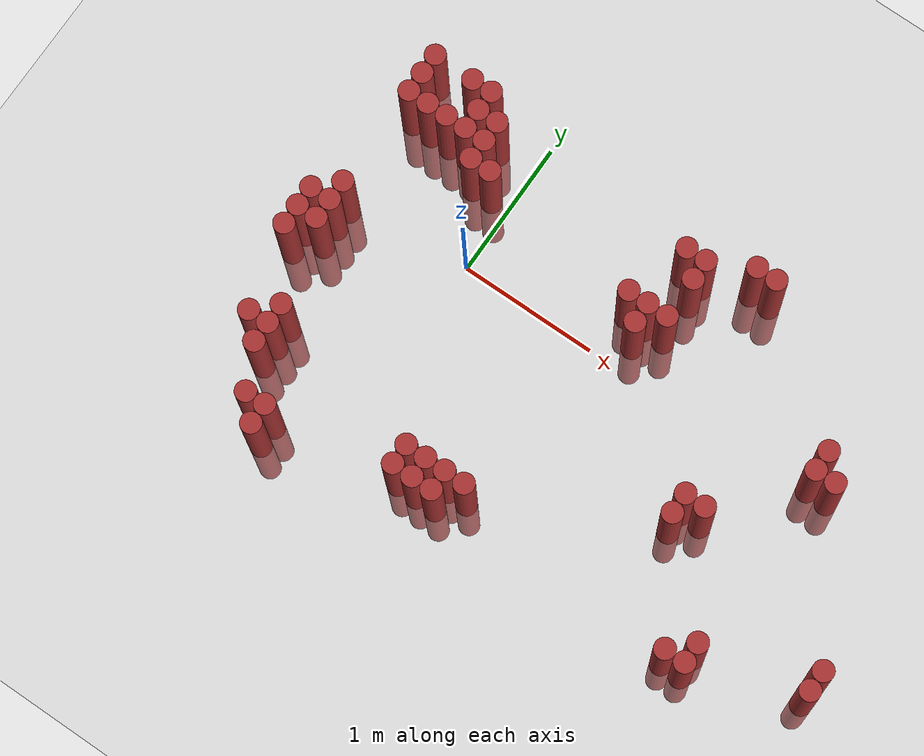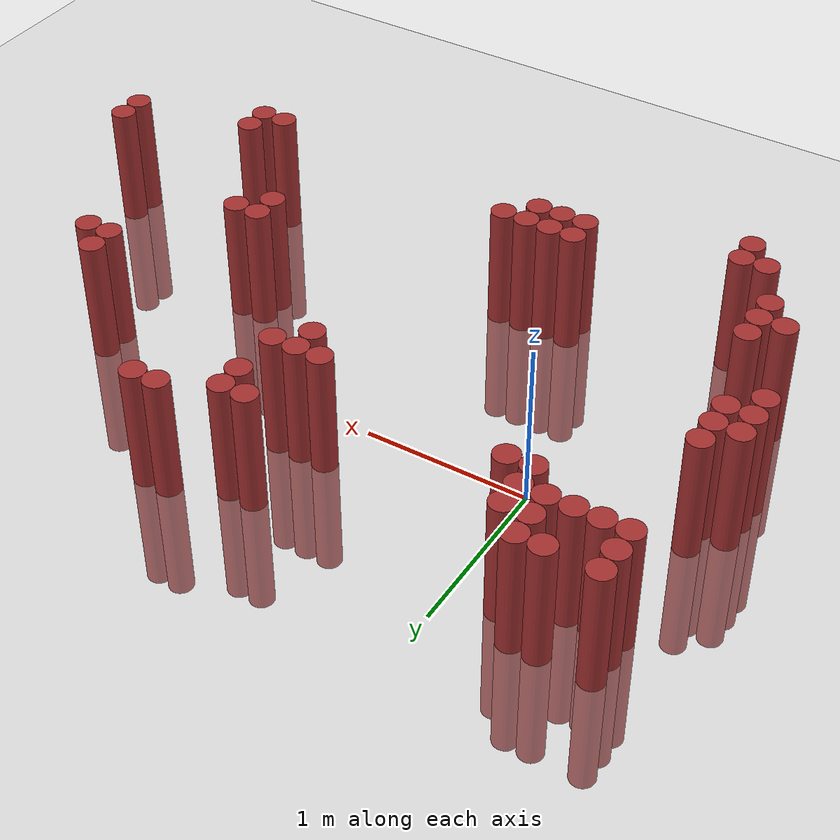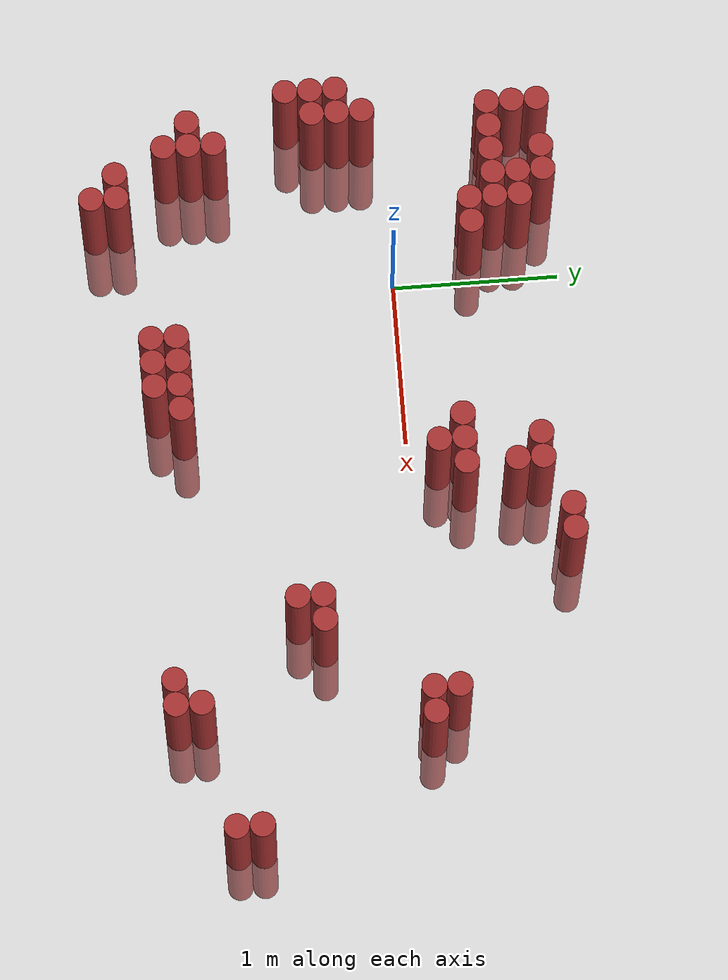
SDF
<sdf version="1.6">
 <world name="default">
  <model name="ground_plane">
   <static>1</static>
   <link name="link">
    <collision name="collision">
     <geometry><plane><normal>0 0 1</normal><size>100 100</size></plane></geometry>
     <surface><friction><ode><mu>100</mu><mu2>50</mu2></ode></friction></surface>
    </collision>
    <visual name="visual">
     <cast_shadows>0</cast_shadows>
     <geometry><plane><normal>0 0 1</normal><size>100 100</size></plane></geometry>
     <material>
      <script><uri>file://media/materials/scripts/gazebo.material</uri><name>Gazebo/Grey</name></script>
     </material>
    </visual>
   </link>
  </model>
  <model name="unit_cylinder_345">
   <static>1</static>
   <pose>-1.025000 -0.575000 0.000000 0.000000 0.000000 0.000000</pose>
   <link name="link">
    <inertial>
     <mass>1</mass>
     <inertia><ixx>0.145833</ixx><ixy>0</ixy><ixz>0</ixz><iyy>0.145833</iyy><iyz>0</iyz><izz>0.125</izz></inertia>
    </inertial>
    <collision name="collision">
     <geometry><cylinder><radius>0.075000</radius><length>1.5</length></cylinder></geometry>
    </collision>
    <visual name="visual">
     <geometry><cylinder><radius>0.075000</radius><length>1.5</length></cylinder></geometry>
     <material>
      <ambient>0.648000 0.192000 0.192000 1</ambient>
      <diffuse>0.648000 0.192000 0.192000 1</diffuse>
     </material>
     <material>
      <script><name>Gazebo/Grey</name><uri>file://media/materials/scripts/gazebo.material</uri></script>
     </material>
    </visual>
   </link>
  </model>
  <model name="unit_cylinder_346">
   <static>1</static>
   <pose>-1.025000 -0.425000 0.000000 0.000000 0.000000 0.000000</pose>
   <link name="link">
    <inertial>
     <mass>1</mass>
     <inertia><ixx>0.145833</ixx><ixy>0</ixy><ixz>0</ixz><iyy>0.145833</iyy><iyz>0</iyz><izz>0.125</izz></inertia>
    </inertial>
    <collision name="collision">
     <geometry><cylinder><radius>0.075000</radius><length>1.5</length></cylinder></geometry>
    </collision>
    <visual name="visual">
     <geometry><cylinder><radius>0.075000</radius><length>1.5</length></cylinder></geometry>
     <material>
      <ambient>0.648000 0.192000 0.192000 1</ambient>
      <diffuse>0.648000 0.192000 0.192000 1</diffuse>
     </material>
     <material>
      <script><name>Gazebo/Grey</name><uri>file://media/materials/scripts/gazebo.material</uri></script>
     </material>
    </visual>
   </link>
  </model>
  <model name="unit_cylinder_347">
   <static>1</static>
   <pose>-1.025000 -0.275000 0.000000 0.000000 0.000000 0.000000</pose>
   <link name="link">
    <inertial>
     <mass>1</mass>
     <inertia><ixx>0.145833</ixx><ixy>0</ixy><ixz>0</ixz><iyy>0.145833</iyy><iyz>0</iyz><izz>0.125</izz></inertia>
    </inertial>
    <collision name="collision">
     <geometry><cylinder><radius>0.075000</radius><length>1.5</length></cylinder></geometry>
    </collision>
    <visual name="visual">
     <geometry><cylinder><radius>0.075000</radius><length>1.5</length></cylinder></geometry>
     <material>
      <ambient>0.648000 0.192000 0.192000 1</ambient>
      <diffuse>0.648000 0.192000 0.192000 1</diffuse>
     </material>
     <material>
      <script><name>Gazebo/Grey</name><uri>file://media/materials/scripts/gazebo.material</uri></script>
     </material>
    </visual>
   </link>
  </model>
  <model name="unit_cylinder_355">
   <static>1</static>
   <pose>-0.875000 -1.175000 0.000000 0.000000 0.000000 0.000000</pose>
   <link name="link">
    <inertial>
     <mass>1</mass>
     <inertia><ixx>0.145833</ixx><ixy>0</ixy><ixz>0</ixz><iyy>0.145833</iyy><iyz>0</iyz><izz>0.125</izz></inertia>
    </inertial>
    <collision name="collision">
     <geometry><cylinder><radius>0.075000</radius><length>1.5</length></cylinder></geometry>
    </collision>
    <visual name="visual">
     <geometry><cylinder><radius>0.075000</radius><length>1.5</length></cylinder></geometry>
     <material>
      <ambient>0.648000 0.192000 0.192000 1</ambient>
      <diffuse>0.648000 0.192000 0.192000 1</diffuse>
     </material>
     <material>
      <script><name>Gazebo/Grey</name><uri>file://media/materials/scripts/gazebo.material</uri></script>
     </material>
    </visual>
   </link>
  </model>
  <model name="unit_cylinder_356">
   <static>1</static>
   <pose>-0.875000 -0.425000 0.000000 0.000000 0.000000 0.000000</pose>
   <link name="link">
    <inertial>
     <mass>1</mass>
     <inertia><ixx>0.145833</ixx><ixy>0</ixy><ixz>0</ixz><iyy>0.145833</iyy><iyz>0</iyz><izz>0.125</izz></inertia>
    </inertial>
    <collision name="collision">
     <geometry><cylinder><radius>0.075000</radius><length>1.5</length></cylinder></geometry>
    </collision>
    <visual name="visual">
     <geometry><cylinder><radius>0.075000</radius><length>1.5</length></cylinder></geometry>
     <material>
      <ambient>0.648000 0.192000 0.192000 1</ambient>
      <diffuse>0.648000 0.192000 0.192000 1</diffuse>
     </material>
     <material>
      <script><name>Gazebo/Grey</name><uri>file://media/materials/scripts/gazebo.material</uri></script>
     </material>
    </visual>
   </link>
  </model>
  <model name="unit_cylinder_357">
   <static>1</static>
   <pose>-0.875000 -0.275000 0.000000 0.000000 0.000000 0.000000</pose>
   <link name="link">
    <inertial>
     <mass>1</mass>
     <inertia><ixx>0.145833</ixx><ixy>0</ixy><ixz>0</ixz><iyy>0.145833</iyy><iyz>0</iyz><izz>0.125</izz></inertia>
    </inertial>
    <collision name="collision">
     <geometry><cylinder><radius>0.075000</radius><length>1.5</length></cylinder></geometry>
    </collision>
    <visual name="visual">
     <geometry><cylinder><radius>0.075000</radius><length>1.5</length></cylinder></geometry>
     <material>
      <ambient>0.648000 0.192000 0.192000 1</ambient>
      <diffuse>0.648000 0.192000 0.192000 1</diffuse>
     </material>
     <material>
      <script><name>Gazebo/Grey</name><uri>file://media/materials/scripts/gazebo.material</uri></script>
     </material>
    </visual>
   </link>
  </model>
  <model name="unit_cylinder_358">
   <static>1</static>
   <pose>-0.875000 -0.125000 0.000000 0.000000 0.000000 0.000000</pose>
   <link name="link">
    <inertial>
     <mass>1</mass>
     <inertia><ixx>0.145833</ixx><ixy>0</ixy><ixz>0</ixz><iyy>0.145833</iyy><iyz>0</iyz><izz>0.125</izz></inertia>
    </inertial>
    <collision name="collision">
     <geometry><cylinder><radius>0.075000</radius><length>1.5</length></cylinder></geometry>
    </collision>
    <visual name="visual">
     <geometry><cylinder><radius>0.075000</radius><length>1.5</length></cylinder></geometry>
     <material>
      <ambient>0.648000 0.192000 0.192000 1</ambient>
      <diffuse>0.648000 0.192000 0.192000 1</diffuse>
     </material>
     <material>
      <script><name>Gazebo/Grey</name><uri>file://media/materials/scripts/gazebo.material</uri></script>
     </material>
    </visual>
   </link>
  </model>
  <model name="unit_cylinder_359">
   <static>1</static>
   <pose>-0.875000 0.625000 0.000000 0.000000 0.000000 0.000000</pose>
   <link name="link">
    <inertial>
     <mass>1</mass>
     <inertia><ixx>0.145833</ixx><ixy>0</ixy><ixz>0</ixz><iyy>0.145833</iyy><iyz>0</iyz><izz>0.125</izz></inertia>
    </inertial>
    <collision name="collision">
     <geometry><cylinder><radius>0.075000</radius><length>1.5</length></cylinder></geometry>
    </collision>
    <visual name="visual">
     <geometry><cylinder><radius>0.075000</radius><length>1.5</length></cylinder></geometry>
     <material>
      <ambient>0.648000 0.192000 0.192000 1</ambient>
      <diffuse>0.648000 0.192000 0.192000 1</diffuse>
     </material>
     <material>
      <script><name>Gazebo/Grey</name><uri>file://media/materials/scripts/gazebo.material</uri></script>
     </material>
    </visual>
   </link>
  </model>
  <model name="unit_cylinder_360">
   <static>1</static>
   <pose>-0.875000 0.775000 0.000000 0.000000 0.000000 0.000000</pose>
   <link name="link">
    <inertial>
     <mass>1</mass>
     <inertia><ixx>0.145833</ixx><ixy>0</ixy><ixz>0</ixz><iyy>0.145833</iyy><iyz>0</iyz><izz>0.125</izz></inertia>
    </inertial>
    <collision name="collision">
     <geometry><cylinder><radius>0.075000</radius><length>1.5</length></cylinder></geometry>
    </collision>
    <visual name="visual">
     <geometry><cylinder><radius>0.075000</radius><length>1.5</length></cylinder></geometry>
     <material>
      <ambient>0.648000 0.192000 0.192000 1</ambient>
      <diffuse>0.648000 0.192000 0.192000 1</diffuse>
     </material>
     <material>
      <script><name>Gazebo/Grey</name><uri>file://media/materials/scripts/gazebo.material</uri></script>
     </material>
    </visual>
   </link>
  </model>
  <model name="unit_cylinder_361">
   <static>1</static>
   <pose>-0.875000 0.925000 0.000000 0.000000 0.000000 0.000000</pose>
   <link name="link">
    <inertial>
     <mass>1</mass>
     <inertia><ixx>0.145833</ixx><ixy>0</ixy><ixz>0</ixz><iyy>0.145833</iyy><iyz>0</iyz><izz>0.125</izz></inertia>
    </inertial>
    <collision name="collision">
     <geometry><cylinder><radius>0.075000</radius><length>1.5</length></cylinder></geometry>
    </collision>
    <visual name="visual">
     <geometry><cylinder><radius>0.075000</radius><length>1.5</length></cylinder></geometry>
     <material>
      <ambient>0.648000 0.192000 0.192000 1</ambient>
      <diffuse>0.648000 0.192000 0.192000 1</diffuse>
     </material>
     <material>
      <script><name>Gazebo/Grey</name><uri>file://media/materials/scripts/gazebo.material</uri></script>
     </material>
    </visual>
   </link>
  </model>
  <model name="unit_cylinder_368">
   <static>1</static>
   <pose>-0.725000 -1.325000 0.000000 0.000000 0.000000 0.000000</pose>
   <link name="link">
    <inertial>
     <mass>1</mass>
     <inertia><ixx>0.145833</ixx><ixy>0</ixy><ixz>0</ixz><iyy>0.145833</iyy><iyz>0</iyz><izz>0.125</izz></inertia>
    </inertial>
    <collision name="collision">
     <geometry><cylinder><radius>0.075000</radius><length>1.5</length></cylinder></geometry>
    </collision>
    <visual name="visual">
     <geometry><cylinder><radius>0.075000</radius><length>1.5</length></cylinder></geometry>
     <material>
      <ambient>0.648000 0.192000 0.192000 1</ambient>
      <diffuse>0.648000 0.192000 0.192000 1</diffuse>
     </material>
     <material>
      <script><name>Gazebo/Grey</name><uri>file://media/materials/scripts/gazebo.material</uri></script>
     </material>
    </visual>
   </link>
  </model>
  <model name="unit_cylinder_369">
   <static>1</static>
   <pose>-0.725000 -1.175000 0.000000 0.000000 0.000000 0.000000</pose>
   <link name="link">
    <inertial>
     <mass>1</mass>
     <inertia><ixx>0.145833</ixx><ixy>0</ixy><ixz>0</ixz><iyy>0.145833</iyy><iyz>0</iyz><izz>0.125</izz></inertia>
    </inertial>
    <collision name="collision">
     <geometry><cylinder><radius>0.075000</radius><length>1.5</length></cylinder></geometry>
    </collision>
    <visual name="visual">
     <geometry><cylinder><radius>0.075000</radius><length>1.5</length></cylinder></geometry>
     <material>
      <ambient>0.648000 0.192000 0.192000 1</ambient>
      <diffuse>0.648000 0.192000 0.192000 1</diffuse>
     </material>
     <material>
      <script><name>Gazebo/Grey</name><uri>file://media/materials/scripts/gazebo.material</uri></script>
     </material>
    </visual>
   </link>
  </model>
  <model name="unit_cylinder_370">
   <static>1</static>
   <pose>-0.725000 -1.025000 0.000000 0.000000 0.000000 0.000000</pose>
   <link name="link">
    <inertial>
     <mass>1</mass>
     <inertia><ixx>0.145833</ixx><ixy>0</ixy><ixz>0</ixz><iyy>0.145833</iyy><iyz>0</iyz><izz>0.125</izz></inertia>
    </inertial>
    <collision name="collision">
     <geometry><cylinder><radius>0.075000</radius><length>1.5</length></cylinder></geometry>
    </collision>
    <visual name="visual">
     <geometry><cylinder><radius>0.075000</radius><length>1.5</length></cylinder></geometry>
     <material>
      <ambient>0.648000 0.192000 0.192000 1</ambient>
      <diffuse>0.648000 0.192000 0.192000 1</diffuse>
     </material>
     <material>
      <script><name>Gazebo/Grey</name><uri>file://media/materials/scripts/gazebo.material</uri></script>
     </material>
    </visual>
   </link>
  </model>
  <model name="unit_cylinder_371">
   <static>1</static>
   <pose>-0.725000 0.625000 0.000000 0.000000 0.000000 0.000000</pose>
   <link name="link">
    <inertial>
     <mass>1</mass>
     <inertia><ixx>0.145833</ixx><ixy>0</ixy><ixz>0</ixz><iyy>0.145833</iyy><iyz>0</iyz><izz>0.125</izz></inertia>
    </inertial>
    <collision name="collision">
     <geometry><cylinder><radius>0.075000</radius><length>1.5</length></cylinder></geometry>
    </collision>
    <visual name="visual">
     <geometry><cylinder><radius>0.075000</radius><length>1.5</length></cylinder></geometry>
     <material>
      <ambient>0.648000 0.192000 0.192000 1</ambient>
      <diffuse>0.648000 0.192000 0.192000 1</diffuse>
     </material>
     <material>
      <script><name>Gazebo/Grey</name><uri>file://media/materials/scripts/gazebo.material</uri></script>
     </material>
    </visual>
   </link>
  </model>
  <model name="unit_cylinder_376">
   <static>1</static>
   <pose>-0.575000 -1.625000 0.000000 0.000000 0.000000 0.000000</pose>
   <link name="link">
    <inertial>
     <mass>1</mass>
     <inertia><ixx>0.145833</ixx><ixy>0</ixy><ixz>0</ixz><iyy>0.145833</iyy><iyz>0</iyz><izz>0.125</izz></inertia>
    </inertial>
    <collision name="collision">
     <geometry><cylinder><radius>0.075000</radius><length>1.5</length></cylinder></geometry>
    </collision>
    <visual name="visual">
     <geometry><cylinder><radius>0.075000</radius><length>1.5</length></cylinder></geometry>
     <material>
      <ambient>0.648000 0.192000 0.192000 1</ambient>
      <diffuse>0.648000 0.192000 0.192000 1</diffuse>
     </material>
     <material>
      <script><name>Gazebo/Grey</name><uri>file://media/materials/scripts/gazebo.material</uri></script>
     </material>
    </visual>
   </link>
  </model>
  <model name="unit_cylinder_377">
   <static>1</static>
   <pose>-0.575000 0.625000 0.000000 0.000000 0.000000 0.000000</pose>
   <link name="link">
    <inertial>
     <mass>1</mass>
     <inertia><ixx>0.145833</ixx><ixy>0</ixy><ixz>0</ixz><iyy>0.145833</iyy><iyz>0</iyz><izz>0.125</izz></inertia>
    </inertial>
    <collision name="collision">
     <geometry><cylinder><radius>0.075000</radius><length>1.5</length></cylinder></geometry>
    </collision>
    <visual name="visual">
     <geometry><cylinder><radius>0.075000</radius><length>1.5</length></cylinder></geometry>
     <material>
      <ambient>0.648000 0.192000 0.192000 1</ambient>
      <diffuse>0.648000 0.192000 0.192000 1</diffuse>
     </material>
     <material>
      <script><name>Gazebo/Grey</name><uri>file://media/materials/scripts/gazebo.material</uri></script>
     </material>
    </visual>
   </link>
  </model>
  <model name="unit_cylinder_378">
   <static>1</static>
   <pose>-0.575000 0.925000 0.000000 0.000000 0.000000 0.000000</pose>
   <link name="link">
    <inertial>
     <mass>1</mass>
     <inertia><ixx>0.145833</ixx><ixy>0</ixy><ixz>0</ixz><iyy>0.145833</iyy><iyz>0</iyz><izz>0.125</izz></inertia>
    </inertial>
    <collision name="collision">
     <geometry><cylinder><radius>0.075000</radius><length>1.5</length></cylinder></geometry>
    </collision>
    <visual name="visual">
     <geometry><cylinder><radius>0.075000</radius><length>1.5</length></cylinder></geometry>
     <material>
      <ambient>0.648000 0.192000 0.192000 1</ambient>
      <diffuse>0.648000 0.192000 0.192000 1</diffuse>
     </material>
     <material>
      <script><name>Gazebo/Grey</name><uri>file://media/materials/scripts/gazebo.material</uri></script>
     </material>
    </visual>
   </link>
  </model>
  <model name="unit_cylinder_380">
   <static>1</static>
   <pose>-0.425000 -1.775000 0.000000 0.000000 0.000000 0.000000</pose>
   <link name="link">
    <inertial>
     <mass>1</mass>
     <inertia><ixx>0.145833</ixx><ixy>0</ixy><ixz>0</ixz><iyy>0.145833</iyy><iyz>0</iyz><izz>0.125</izz></inertia>
    </inertial>
    <collision name="collision">
     <geometry><cylinder><radius>0.075000</radius><length>1.5</length></cylinder></geometry>
    </collision>
    <visual name="visual">
     <geometry><cylinder><radius>0.075000</radius><length>1.5</length></cylinder></geometry>
     <material>
      <ambient>0.648000 0.192000 0.192000 1</ambient>
      <diffuse>0.648000 0.192000 0.192000 1</diffuse>
     </material>
     <material>
      <script><name>Gazebo/Grey</name><uri>file://media/materials/scripts/gazebo.material</uri></script>
     </material>
    </visual>
   </link>
  </model>
  <model name="unit_cylinder_381">
   <static>1</static>
   <pose>-0.425000 -1.625000 0.000000 0.000000 0.000000 0.000000</pose>
   <link name="link">
    <inertial>
     <mass>1</mass>
     <inertia><ixx>0.145833</ixx><ixy>0</ixy><ixz>0</ixz><iyy>0.145833</iyy><iyz>0</iyz><izz>0.125</izz></inertia>
    </inertial>
    <collision name="collision">
     <geometry><cylinder><radius>0.075000</radius><length>1.5</length></cylinder></geometry>
    </collision>
    <visual name="visual">
     <geometry><cylinder><radius>0.075000</radius><length>1.5</length></cylinder></geometry>
     <material>
      <ambient>0.648000 0.192000 0.192000 1</ambient>
      <diffuse>0.648000 0.192000 0.192000 1</diffuse>
     </material>
     <material>
      <script><name>Gazebo/Grey</name><uri>file://media/materials/scripts/gazebo.material</uri></script>
     </material>
    </visual>
   </link>
  </model>
  <model name="unit_cylinder_382">
   <static>1</static>
   <pose>-0.425000 0.625000 0.000000 0.000000 0.000000 0.000000</pose>
   <link name="link">
    <inertial>
     <mass>1</mass>
     <inertia><ixx>0.145833</ixx><ixy>0</ixy><ixz>0</ixz><iyy>0.145833</iyy><iyz>0</iyz><izz>0.125</izz></inertia>
    </inertial>
    <collision name="collision">
     <geometry><cylinder><radius>0.075000</radius><length>1.5</length></cylinder></geometry>
    </collision>
    <visual name="visual">
     <geometry><cylinder><radius>0.075000</radius><length>1.5</length></cylinder></geometry>
     <material>
      <ambient>0.648000 0.192000 0.192000 1</ambient>
      <diffuse>0.648000 0.192000 0.192000 1</diffuse>
     </material>
     <material>
      <script><name>Gazebo/Grey</name><uri>file://media/materials/scripts/gazebo.material</uri></script>
     </material>
    </visual>
   </link>
  </model>
  <model name="unit_cylinder_383">
   <static>1</static>
   <pose>-0.425000 0.775000 0.000000 0.000000 0.000000 0.000000</pose>
   <link name="link">
    <inertial>
     <mass>1</mass>
     <inertia><ixx>0.145833</ixx><ixy>0</ixy><ixz>0</ixz><iyy>0.145833</iyy><iyz>0</iyz><izz>0.125</izz></inertia>
    </inertial>
    <collision name="collision">
     <geometry><cylinder><radius>0.075000</radius><length>1.5</length></cylinder></geometry>
    </collision>
    <visual name="visual">
     <geometry><cylinder><radius>0.075000</radius><length>1.5</length></cylinder></geometry>
     <material>
      <ambient>0.648000 0.192000 0.192000 1</ambient>
      <diffuse>0.648000 0.192000 0.192000 1</diffuse>
     </material>
     <material>
      <script><name>Gazebo/Grey</name><uri>file://media/materials/scripts/gazebo.material</uri></script>
     </material>
    </visual>
   </link>
  </model>
  <model name="unit_cylinder_384">
   <static>1</static>
   <pose>-0.425000 0.925000 0.000000 0.000000 0.000000 0.000000</pose>
   <link name="link">
    <inertial>
     <mass>1</mass>
     <inertia><ixx>0.145833</ixx><ixy>0</ixy><ixz>0</ixz><iyy>0.145833</iyy><iyz>0</iyz><izz>0.125</izz></inertia>
    </inertial>
    <collision name="collision">
     <geometry><cylinder><radius>0.075000</radius><length>1.5</length></cylinder></geometry>
    </collision>
    <visual name="visual">
     <geometry><cylinder><radius>0.075000</radius><length>1.5</length></cylinder></geometry>
     <material>
      <ambient>0.648000 0.192000 0.192000 1</ambient>
      <diffuse>0.648000 0.192000 0.192000 1</diffuse>
     </material>
     <material>
      <script><name>Gazebo/Grey</name><uri>file://media/materials/scripts/gazebo.material</uri></script>
     </material>
    </visual>
   </link>
  </model>
  <model name="unit_cylinder_386">
   <static>1</static>
   <pose>-0.275000 0.475000 0.000000 0.000000 0.000000 0.000000</pose>
   <link name="link">
    <inertial>
     <mass>1</mass>
     <inertia><ixx>0.145833</ixx><ixy>0</ixy><ixz>0</ixz><iyy>0.145833</iyy><iyz>0</iyz><izz>0.125</izz></inertia>
    </inertial>
    <collision name="collision">
     <geometry><cylinder><radius>0.075000</radius><length>1.5</length></cylinder></geometry>
    </collision>
    <visual name="visual">
     <geometry><cylinder><radius>0.075000</radius><length>1.5</length></cylinder></geometry>
     <material>
      <ambient>0.648000 0.192000 0.192000 1</ambient>
      <diffuse>0.648000 0.192000 0.192000 1</diffuse>
     </material>
     <material>
      <script><name>Gazebo/Grey</name><uri>file://media/materials/scripts/gazebo.material</uri></script>
     </material>
    </visual>
   </link>
  </model>
  <model name="unit_cylinder_387">
   <static>1</static>
   <pose>-0.275000 0.625000 0.000000 0.000000 0.000000 0.000000</pose>
   <link name="link">
    <inertial>
     <mass>1</mass>
     <inertia><ixx>0.145833</ixx><ixy>0</ixy><ixz>0</ixz><iyy>0.145833</iyy><iyz>0</iyz><izz>0.125</izz></inertia>
    </inertial>
    <collision name="collision">
     <geometry><cylinder><radius>0.075000</radius><length>1.5</length></cylinder></geometry>
    </collision>
    <visual name="visual">
     <geometry><cylinder><radius>0.075000</radius><length>1.5</length></cylinder></geometry>
     <material>
      <ambient>0.648000 0.192000 0.192000 1</ambient>
      <diffuse>0.648000 0.192000 0.192000 1</diffuse>
     </material>
     <material>
      <script><name>Gazebo/Grey</name><uri>file://media/materials/scripts/gazebo.material</uri></script>
     </material>
    </visual>
   </link>
  </model>
  <model name="unit_cylinder_388">
   <static>1</static>
   <pose>-0.275000 0.775000 0.000000 0.000000 0.000000 0.000000</pose>
   <link name="link">
    <inertial>
     <mass>1</mass>
     <inertia><ixx>0.145833</ixx><ixy>0</ixy><ixz>0</ixz><iyy>0.145833</iyy><iyz>0</iyz><izz>0.125</izz></inertia>
    </inertial>
    <collision name="collision">
     <geometry><cylinder><radius>0.075000</radius><length>1.5</length></cylinder></geometry>
    </collision>
    <visual name="visual">
     <geometry><cylinder><radius>0.075000</radius><length>1.5</length></cylinder></geometry>
     <material>
      <ambient>0.648000 0.192000 0.192000 1</ambient>
      <diffuse>0.648000 0.192000 0.192000 1</diffuse>
     </material>
     <material>
      <script><name>Gazebo/Grey</name><uri>file://media/materials/scripts/gazebo.material</uri></script>
     </material>
    </visual>
   </link>
  </model>
  <model name="unit_cylinder_391">
   <static>1</static>
   <pose>-0.125000 0.475000 0.000000 0.000000 0.000000 0.000000</pose>
   <link name="link">
    <inertial>
     <mass>1</mass>
     <inertia><ixx>0.145833</ixx><ixy>0</ixy><ixz>0</ixz><iyy>0.145833</iyy><iyz>0</iyz><izz>0.125</izz></inertia>
    </inertial>
    <collision name="collision">
     <geometry><cylinder><radius>0.075000</radius><length>1.5</length></cylinder></geometry>
    </collision>
    <visual name="visual">
     <geometry><cylinder><radius>0.075000</radius><length>1.5</length></cylinder></geometry>
     <material>
      <ambient>0.648000 0.192000 0.192000 1</ambient>
      <diffuse>0.648000 0.192000 0.192000 1</diffuse>
     </material>
     <material>
      <script><name>Gazebo/Grey</name><uri>file://media/materials/scripts/gazebo.material</uri></script>
     </material>
    </visual>
   </link>
  </model>
  <model name="unit_cylinder_392">
   <static>1</static>
   <pose>0.475000 -1.475000 0.000000 0.000000 0.000000 0.000000</pose>
   <link name="link">
    <inertial>
     <mass>1</mass>
     <inertia><ixx>0.145833</ixx><ixy>0</ixy><ixz>0</ixz><iyy>0.145833</iyy><iyz>0</iyz><izz>0.125</izz></inertia>
    </inertial>
    <collision name="collision">
     <geometry><cylinder><radius>0.075000</radius><length>1.5</length></cylinder></geometry>
    </collision>
    <visual name="visual">
     <geometry><cylinder><radius>0.075000</radius><length>1.5</length></cylinder></geometry>
     <material>
      <ambient>0.648000 0.192000 0.192000 1</ambient>
      <diffuse>0.648000 0.192000 0.192000 1</diffuse>
     </material>
     <material>
      <script><name>Gazebo/Grey</name><uri>file://media/materials/scripts/gazebo.material</uri></script>
     </material>
    </visual>
   </link>
  </model>
  <model name="unit_cylinder_393">
   <static>1</static>
   <pose>0.475000 -1.325000 0.000000 0.000000 0.000000 0.000000</pose>
   <link name="link">
    <inertial>
     <mass>1</mass>
     <inertia><ixx>0.145833</ixx><ixy>0</ixy><ixz>0</ixz><iyy>0.145833</iyy><iyz>0</iyz><izz>0.125</izz></inertia>
    </inertial>
    <collision name="collision">
     <geometry><cylinder><radius>0.075000</radius><length>1.5</length></cylinder></geometry>
    </collision>
    <visual name="visual">
     <geometry><cylinder><radius>0.075000</radius><length>1.5</length></cylinder></geometry>
     <material>
      <ambient>0.648000 0.192000 0.192000 1</ambient>
      <diffuse>0.648000 0.192000 0.192000 1</diffuse>
     </material>
     <material>
      <script><name>Gazebo/Grey</name><uri>file://media/materials/scripts/gazebo.material</uri></script>
     </material>
    </visual>
   </link>
  </model>
  <model name="unit_cylinder_394">
   <static>1</static>
   <pose>0.625000 -1.475000 0.000000 0.000000 0.000000 0.000000</pose>
   <link name="link">
    <inertial>
     <mass>1</mass>
     <inertia><ixx>0.145833</ixx><ixy>0</ixy><ixz>0</ixz><iyy>0.145833</iyy><iyz>0</iyz><izz>0.125</izz></inertia>
    </inertial>
    <collision name="collision">
     <geometry><cylinder><radius>0.075000</radius><length>1.5</length></cylinder></geometry>
    </collision>
    <visual name="visual">
     <geometry><cylinder><radius>0.075000</radius><length>1.5</length></cylinder></geometry>
     <material>
      <ambient>0.648000 0.192000 0.192000 1</ambient>
      <diffuse>0.648000 0.192000 0.192000 1</diffuse>
     </material>
     <material>
      <script><name>Gazebo/Grey</name><uri>file://media/materials/scripts/gazebo.material</uri></script>
     </material>
    </visual>
   </link>
  </model>
  <model name="unit_cylinder_395">
   <static>1</static>
   <pose>0.625000 -1.325000 0.000000 0.000000 0.000000 0.000000</pose>
   <link name="link">
    <inertial>
     <mass>1</mass>
     <inertia><ixx>0.145833</ixx><ixy>0</ixy><ixz>0</ixz><iyy>0.145833</iyy><iyz>0</iyz><izz>0.125</izz></inertia>
    </inertial>
    <collision name="collision">
     <geometry><cylinder><radius>0.075000</radius><length>1.5</length></cylinder></geometry>
    </collision>
    <visual name="visual">
     <geometry><cylinder><radius>0.075000</radius><length>1.5</length></cylinder></geometry>
     <material>
      <ambient>0.648000 0.192000 0.192000 1</ambient>
      <diffuse>0.648000 0.192000 0.192000 1</diffuse>
     </material>
     <material>
      <script><name>Gazebo/Grey</name><uri>file://media/materials/scripts/gazebo.material</uri></script>
     </material>
    </visual>
   </link>
  </model>
  <model name="unit_cylinder_397">
   <static>1</static>
   <pose>0.775000 -1.475000 0.000000 0.000000 0.000000 0.000000</pose>
   <link name="link">
    <inertial>
     <mass>1</mass>
     <inertia><ixx>0.145833</ixx><ixy>0</ixy><ixz>0</ixz><iyy>0.145833</iyy><iyz>0</iyz><izz>0.125</izz></inertia>
    </inertial>
    <collision name="collision">
     <geometry><cylinder><radius>0.075000</radius><length>1.5</length></cylinder></geometry>
    </collision>
    <visual name="visual">
     <geometry><cylinder><radius>0.075000</radius><length>1.5</length></cylinder></geometry>
     <material>
      <ambient>0.648000 0.192000 0.192000 1</ambient>
      <diffuse>0.648000 0.192000 0.192000 1</diffuse>
     </material>
     <material>
      <script><name>Gazebo/Grey</name><uri>file://media/materials/scripts/gazebo.material</uri></script>
     </material>
    </visual>
   </link>
  </model>
  <model name="unit_cylinder_398">
   <static>1</static>
   <pose>0.775000 -1.325000 0.000000 0.000000 0.000000 0.000000</pose>
   <link name="link">
    <inertial>
     <mass>1</mass>
     <inertia><ixx>0.145833</ixx><ixy>0</ixy><ixz>0</ixz><iyy>0.145833</iyy><iyz>0</iyz><izz>0.125</izz></inertia>
    </inertial>
    <collision name="collision">
     <geometry><cylinder><radius>0.075000</radius><length>1.5</length></cylinder></geometry>
    </collision>
    <visual name="visual">
     <geometry><cylinder><radius>0.075000</radius><length>1.5</length></cylinder></geometry>
     <material>
      <ambient>0.648000 0.192000 0.192000 1</ambient>
      <diffuse>0.648000 0.192000 0.192000 1</diffuse>
     </material>
     <material>
      <script><name>Gazebo/Grey</name><uri>file://media/materials/scripts/gazebo.material</uri></script>
     </material>
    </visual>
   </link>
  </model>
  <model name="unit_cylinder_399">
   <static>1</static>
   <pose>0.925000 -1.325000 0.000000 0.000000 0.000000 0.000000</pose>
   <link name="link">
    <inertial>
     <mass>1</mass>
     <inertia><ixx>0.145833</ixx><ixy>0</ixy><ixz>0</ixz><iyy>0.145833</iyy><iyz>0</iyz><izz>0.125</izz></inertia>
    </inertial>
    <collision name="collision">
     <geometry><cylinder><radius>0.075000</radius><length>1.5</length></cylinder></geometry>
    </collision>
    <visual name="visual">
     <geometry><cylinder><radius>0.075000</radius><length>1.5</length></cylinder></geometry>
     <material>
      <ambient>0.648000 0.192000 0.192000 1</ambient>
      <diffuse>0.648000 0.192000 0.192000 1</diffuse>
     </material>
     <material>
      <script><name>Gazebo/Grey</name><uri>file://media/materials/scripts/gazebo.material</uri></script>
     </material>
    </visual>
   </link>
  </model>
  <model name="unit_cylinder_400">
   <static>1</static>
   <pose>1.075000 0.325000 0.000000 0.000000 0.000000 0.000000</pose>
   <link name="link">
    <inertial>
     <mass>1</mass>
     <inertia><ixx>0.145833</ixx><ixy>0</ixy><ixz>0</ixz><iyy>0.145833</iyy><iyz>0</iyz><izz>0.125</izz></inertia>
    </inertial>
    <collision name="collision">
     <geometry><cylinder><radius>0.075000</radius><length>1.5</length></cylinder></geometry>
    </collision>
    <visual name="visual">
     <geometry><cylinder><radius>0.075000</radius><length>1.5</length></cylinder></geometry>
     <material>
      <ambient>0.648000 0.192000 0.192000 1</ambient>
      <diffuse>0.648000 0.192000 0.192000 1</diffuse>
     </material>
     <material>
      <script><name>Gazebo/Grey</name><uri>file://media/materials/scripts/gazebo.material</uri></script>
     </material>
    </visual>
   </link>
  </model>
  <model name="unit_cylinder_402">
   <static>1</static>
   <pose>1.225000 0.175000 0.000000 0.000000 0.000000 0.000000</pose>
   <link name="link">
    <inertial>
     <mass>1</mass>
     <inertia><ixx>0.145833</ixx><ixy>0</ixy><ixz>0</ixz><iyy>0.145833</iyy><iyz>0</iyz><izz>0.125</izz></inertia>
    </inertial>
    <collision name="collision">
     <geometry><cylinder><radius>0.075000</radius><length>1.5</length></cylinder></geometry>
    </collision>
    <visual name="visual">
     <geometry><cylinder><radius>0.075000</radius><length>1.5</length></cylinder></geometry>
     <material>
      <ambient>0.648000 0.192000 0.192000 1</ambient>
      <diffuse>0.648000 0.192000 0.192000 1</diffuse>
     </material>
     <material>
      <script><name>Gazebo/Grey</name><uri>file://media/materials/scripts/gazebo.material</uri></script>
     </material>
    </visual>
   </link>
  </model>
  <model name="unit_cylinder_403">
   <static>1</static>
   <pose>1.225000 0.325000 0.000000 0.000000 0.000000 0.000000</pose>
   <link name="link">
    <inertial>
     <mass>1</mass>
     <inertia><ixx>0.145833</ixx><ixy>0</ixy><ixz>0</ixz><iyy>0.145833</iyy><iyz>0</iyz><izz>0.125</izz></inertia>
    </inertial>
    <collision name="collision">
     <geometry><cylinder><radius>0.075000</radius><length>1.5</length></cylinder></geometry>
    </collision>
    <visual name="visual">
     <geometry><cylinder><radius>0.075000</radius><length>1.5</length></cylinder></geometry>
     <material>
      <ambient>0.648000 0.192000 0.192000 1</ambient>
      <diffuse>0.648000 0.192000 0.192000 1</diffuse>
     </material>
     <material>
      <script><name>Gazebo/Grey</name><uri>file://media/materials/scripts/gazebo.material</uri></script>
     </material>
    </visual>
   </link>
  </model>
  <model name="unit_cylinder_404">
   <static>1</static>
   <pose>1.225000 0.775000 0.000000 0.000000 0.000000 0.000000</pose>
   <link name="link">
    <inertial>
     <mass>1</mass>
     <inertia><ixx>0.145833</ixx><ixy>0</ixy><ixz>0</ixz><iyy>0.145833</iyy><iyz>0</iyz><izz>0.125</izz></inertia>
    </inertial>
    <collision name="collision">
     <geometry><cylinder><radius>0.075000</radius><length>1.5</length></cylinder></geometry>
    </collision>
    <visual name="visual">
     <geometry><cylinder><radius>0.075000</radius><length>1.5</length></cylinder></geometry>
     <material>
      <ambient>0.648000 0.192000 0.192000 1</ambient>
      <diffuse>0.648000 0.192000 0.192000 1</diffuse>
     </material>
     <material>
      <script><name>Gazebo/Grey</name><uri>file://media/materials/scripts/gazebo.material</uri></script>
     </material>
    </visual>
   </link>
  </model>
  <model name="unit_cylinder_410">
   <static>1</static>
   <pose>1.375000 0.325000 0.000000 0.000000 0.000000 0.000000</pose>
   <link name="link">
    <inertial>
     <mass>1</mass>
     <inertia><ixx>0.145833</ixx><ixy>0</ixy><ixz>0</ixz><iyy>0.145833</iyy><iyz>0</iyz><izz>0.125</izz></inertia>
    </inertial>
    <collision name="collision">
     <geometry><cylinder><radius>0.075000</radius><length>1.5</length></cylinder></geometry>
    </collision>
    <visual name="visual">
     <geometry><cylinder><radius>0.075000</radius><length>1.5</length></cylinder></geometry>
     <material>
      <ambient>0.648000 0.192000 0.192000 1</ambient>
      <diffuse>0.648000 0.192000 0.192000 1</diffuse>
     </material>
     <material>
      <script><name>Gazebo/Grey</name><uri>file://media/materials/scripts/gazebo.material</uri></script>
     </material>
    </visual>
   </link>
  </model>
  <model name="unit_cylinder_411">
   <static>1</static>
   <pose>1.375000 0.625000 0.000000 0.000000 0.000000 0.000000</pose>
   <link name="link">
    <inertial>
     <mass>1</mass>
     <inertia><ixx>0.145833</ixx><ixy>0</ixy><ixz>0</ixz><iyy>0.145833</iyy><iyz>0</iyz><izz>0.125</izz></inertia>
    </inertial>
    <collision name="collision">
     <geometry><cylinder><radius>0.075000</radius><length>1.5</length></cylinder></geometry>
    </collision>
    <visual name="visual">
     <geometry><cylinder><radius>0.075000</radius><length>1.5</length></cylinder></geometry>
     <material>
      <ambient>0.648000 0.192000 0.192000 1</ambient>
      <diffuse>0.648000 0.192000 0.192000 1</diffuse>
     </material>
     <material>
      <script><name>Gazebo/Grey</name><uri>file://media/materials/scripts/gazebo.material</uri></script>
     </material>
    </visual>
   </link>
  </model>
  <model name="unit_cylinder_412">
   <static>1</static>
   <pose>1.375000 0.775000 0.000000 0.000000 0.000000 0.000000</pose>
   <link name="link">
    <inertial>
     <mass>1</mass>
     <inertia><ixx>0.145833</ixx><ixy>0</ixy><ixz>0</ixz><iyy>0.145833</iyy><iyz>0</iyz><izz>0.125</izz></inertia>
    </inertial>
    <collision name="collision">
     <geometry><cylinder><radius>0.075000</radius><length>1.5</length></cylinder></geometry>
    </collision>
    <visual name="visual">
     <geometry><cylinder><radius>0.075000</radius><length>1.5</length></cylinder></geometry>
     <material>
      <ambient>0.648000 0.192000 0.192000 1</ambient>
      <diffuse>0.648000 0.192000 0.192000 1</diffuse>
     </material>
     <material>
      <script><name>Gazebo/Grey</name><uri>file://media/materials/scripts/gazebo.material</uri></script>
     </material>
    </visual>
   </link>
  </model>
  <model name="unit_cylinder_421">
   <static>1</static>
   <pose>1.675000 0.925000 0.000000 0.000000 0.000000 0.000000</pose>
   <link name="link">
    <inertial>
     <mass>1</mass>
     <inertia><ixx>0.145833</ixx><ixy>0</ixy><ixz>0</ixz><iyy>0.145833</iyy><iyz>0</iyz><izz>0.125</izz></inertia>
    </inertial>
    <collision name="collision">
     <geometry><cylinder><radius>0.075000</radius><length>1.5</length></cylinder></geometry>
    </collision>
    <visual name="visual">
     <geometry><cylinder><radius>0.075000</radius><length>1.5</length></cylinder></geometry>
     <material>
      <ambient>0.648000 0.192000 0.192000 1</ambient>
      <diffuse>0.648000 0.192000 0.192000 1</diffuse>
     </material>
     <material>
      <script><name>Gazebo/Grey</name><uri>file://media/materials/scripts/gazebo.material</uri></script>
     </material>
    </visual>
   </link>
  </model>
  <model name="unit_cylinder_424">
   <static>1</static>
   <pose>1.825000 0.925000 0.000000 0.000000 0.000000 0.000000</pose>
   <link name="link">
    <inertial>
     <mass>1</mass>
     <inertia><ixx>0.145833</ixx><ixy>0</ixy><ixz>0</ixz><iyy>0.145833</iyy><iyz>0</iyz><izz>0.125</izz></inertia>
    </inertial>
    <collision name="collision">
     <geometry><cylinder><radius>0.075000</radius><length>1.5</length></cylinder></geometry>
    </collision>
    <visual name="visual">
     <geometry><cylinder><radius>0.075000</radius><length>1.5</length></cylinder></geometry>
     <material>
      <ambient>0.648000 0.192000 0.192000 1</ambient>
      <diffuse>0.648000 0.192000 0.192000 1</diffuse>
     </material>
     <material>
      <script><name>Gazebo/Grey</name><uri>file://media/materials/scripts/gazebo.material</uri></script>
     </material>
    </visual>
   </link>
  </model>
  <model name="unit_cylinder_426">
   <static>1</static>
   <pose>2.125000 -0.725000 0.000000 0.000000 0.000000 0.000000</pose>
   <link name="link">
    <inertial>
     <mass>1</mass>
     <inertia><ixx>0.145833</ixx><ixy>0</ixy><ixz>0</ixz><iyy>0.145833</iyy><iyz>0</iyz><izz>0.125</izz></inertia>
    </inertial>
    <collision name="collision">
     <geometry><cylinder><radius>0.075000</radius><length>1.5</length></cylinder></geometry>
    </collision>
    <visual name="visual">
     <geometry><cylinder><radius>0.075000</radius><length>1.5</length></cylinder></geometry>
     <material>
      <ambient>0.648000 0.192000 0.192000 1</ambient>
      <diffuse>0.648000 0.192000 0.192000 1</diffuse>
     </material>
     <material>
      <script><name>Gazebo/Grey</name><uri>file://media/materials/scripts/gazebo.material</uri></script>
     </material>
    </visual>
   </link>
  </model>
  <model name="unit_cylinder_427">
   <static>1</static>
   <pose>2.125000 -0.575000 0.000000 0.000000 0.000000 0.000000</pose>
   <link name="link">
    <inertial>
     <mass>1</mass>
     <inertia><ixx>0.145833</ixx><ixy>0</ixy><ixz>0</ixz><iyy>0.145833</iyy><iyz>0</iyz><izz>0.125</izz></inertia>
    </inertial>
    <collision name="collision">
     <geometry><cylinder><radius>0.075000</radius><length>1.5</length></cylinder></geometry>
    </collision>
    <visual name="visual">
     <geometry><cylinder><radius>0.075000</radius><length>1.5</length></cylinder></geometry>
     <material>
      <ambient>0.648000 0.192000 0.192000 1</ambient>
      <diffuse>0.648000 0.192000 0.192000 1</diffuse>
     </material>
     <material>
      <script><name>Gazebo/Grey</name><uri>file://media/materials/scripts/gazebo.material</uri></script>
     </material>
    </visual>
   </link>
  </model>
  <model name="unit_cylinder_428">
   <static>1</static>
   <pose>2.275000 -0.575000 0.000000 0.000000 0.000000 0.000000</pose>
   <link name="link">
    <inertial>
     <mass>1</mass>
     <inertia><ixx>0.145833</ixx><ixy>0</ixy><ixz>0</ixz><iyy>0.145833</iyy><iyz>0</iyz><izz>0.125</izz></inertia>
    </inertial>
    <collision name="collision">
     <geometry><cylinder><radius>0.075000</radius><length>1.5</length></cylinder></geometry>
    </collision>
    <visual name="visual">
     <geometry><cylinder><radius>0.075000</radius><length>1.5</length></cylinder></geometry>
     <material>
      <ambient>0.648000 0.192000 0.192000 1</ambient>
      <diffuse>0.648000 0.192000 0.192000 1</diffuse>
     </material>
     <material>
      <script><name>Gazebo/Grey</name><uri>file://media/materials/scripts/gazebo.material</uri></script>
     </material>
    </visual>
   </link>
  </model>
  <model name="unit_cylinder_429">
   <static>1</static>
   <pose>2.575000 -1.475000 0.000000 0.000000 0.000000 0.000000</pose>
   <link name="link">
    <inertial>
     <mass>1</mass>
     <inertia><ixx>0.145833</ixx><ixy>0</ixy><ixz>0</ixz><iyy>0.145833</iyy><iyz>0</iyz><izz>0.125</izz></inertia>
    </inertial>
    <collision name="collision">
     <geometry><cylinder><radius>0.075000</radius><length>1.5</length></cylinder></geometry>
    </collision>
    <visual name="visual">
     <geometry><cylinder><radius>0.075000</radius><length>1.5</length></cylinder></geometry>
     <material>
      <ambient>0.648000 0.192000 0.192000 1</ambient>
      <diffuse>0.648000 0.192000 0.192000 1</diffuse>
     </material>
     <material>
      <script><name>Gazebo/Grey</name><uri>file://media/materials/scripts/gazebo.material</uri></script>
     </material>
    </visual>
   </link>
  </model>
  <model name="unit_cylinder_431">
   <static>1</static>
   <pose>2.725000 -1.475000 0.000000 0.000000 0.000000 0.000000</pose>
   <link name="link">
    <inertial>
     <mass>1</mass>
     <inertia><ixx>0.145833</ixx><ixy>0</ixy><ixz>0</ixz><iyy>0.145833</iyy><iyz>0</iyz><izz>0.125</izz></inertia>
    </inertial>
    <collision name="collision">
     <geometry><cylinder><radius>0.075000</radius><length>1.5</length></cylinder></geometry>
    </collision>
    <visual name="visual">
     <geometry><cylinder><radius>0.075000</radius><length>1.5</length></cylinder></geometry>
     <material>
      <ambient>0.648000 0.192000 0.192000 1</ambient>
      <diffuse>0.648000 0.192000 0.192000 1</diffuse>
     </material>
     <material>
      <script><name>Gazebo/Grey</name><uri>file://media/materials/scripts/gazebo.material</uri></script>
     </material>
    </visual>
   </link>
  </model>
  <model name="unit_cylinder_432">
   <static>1</static>
   <pose>2.725000 -1.325000 0.000000 0.000000 0.000000 0.000000</pose>
   <link name="link">
    <inertial>
     <mass>1</mass>
     <inertia><ixx>0.145833</ixx><ixy>0</ixy><ixz>0</ixz><iyy>0.145833</iyy><iyz>0</iyz><izz>0.125</izz></inertia>
    </inertial>
    <collision name="collision">
     <geometry><cylinder><radius>0.075000</radius><length>1.5</length></cylinder></geometry>
    </collision>
    <visual name="visual">
     <geometry><cylinder><radius>0.075000</radius><length>1.5</length></cylinder></geometry>
     <material>
      <ambient>0.648000 0.192000 0.192000 1</ambient>
      <diffuse>0.648000 0.192000 0.192000 1</diffuse>
     </material>
     <material>
      <script><name>Gazebo/Grey</name><uri>file://media/materials/scripts/gazebo.material</uri></script>
     </material>
    </visual>
   </link>
  </model>
  <model name="unit_cylinder_433">
   <static>1</static>
   <pose>2.725000 0.025000 0.000000 0.000000 0.000000 0.000000</pose>
   <link name="link">
    <inertial>
     <mass>1</mass>
     <inertia><ixx>0.145833</ixx><ixy>0</ixy><ixz>0</ixz><iyy>0.145833</iyy><iyz>0</iyz><izz>0.125</izz></inertia>
    </inertial>
    <collision name="collision">
     <geometry><cylinder><radius>0.075000</radius><length>1.5</length></cylinder></geometry>
    </collision>
    <visual name="visual">
     <geometry><cylinder><radius>0.075000</radius><length>1.5</length></cylinder></geometry>
     <material>
      <ambient>0.648000 0.192000 0.192000 1</ambient>
      <diffuse>0.648000 0.192000 0.192000 1</diffuse>
     </material>
     <material>
      <script><name>Gazebo/Grey</name><uri>file://media/materials/scripts/gazebo.material</uri></script>
     </material>
    </visual>
   </link>
  </model>
  <model name="unit_cylinder_434">
   <static>1</static>
   <pose>2.725000 0.175000 0.000000 0.000000 0.000000 0.000000</pose>
   <link name="link">
    <inertial>
     <mass>1</mass>
     <inertia><ixx>0.145833</ixx><ixy>0</ixy><ixz>0</ixz><iyy>0.145833</iyy><iyz>0</iyz><izz>0.125</izz></inertia>
    </inertial>
    <collision name="collision">
     <geometry><cylinder><radius>0.075000</radius><length>1.5</length></cylinder></geometry>
    </collision>
    <visual name="visual">
     <geometry><cylinder><radius>0.075000</radius><length>1.5</length></cylinder></geometry>
     <material>
      <ambient>0.648000 0.192000 0.192000 1</ambient>
      <diffuse>0.648000 0.192000 0.192000 1</diffuse>
     </material>
     <material>
      <script><name>Gazebo/Grey</name><uri>file://media/materials/scripts/gazebo.material</uri></script>
     </material>
    </visual>
   </link>
  </model>
  <model name="unit_cylinder_439">
   <static>1</static>
   <pose>2.875000 0.025000 0.000000 0.000000 0.000000 0.000000</pose>
   <link name="link">
    <inertial>
     <mass>1</mass>
     <inertia><ixx>0.145833</ixx><ixy>0</ixy><ixz>0</ixz><iyy>0.145833</iyy><iyz>0</iyz><izz>0.125</izz></inertia>
    </inertial>
    <collision name="collision">
     <geometry><cylinder><radius>0.075000</radius><length>1.5</length></cylinder></geometry>
    </collision>
    <visual name="visual">
     <geometry><cylinder><radius>0.075000</radius><length>1.5</length></cylinder></geometry>
     <material>
      <ambient>0.648000 0.192000 0.192000 1</ambient>
      <diffuse>0.648000 0.192000 0.192000 1</diffuse>
     </material>
     <material>
      <script><name>Gazebo/Grey</name><uri>file://media/materials/scripts/gazebo.material</uri></script>
     </material>
    </visual>
   </link>
  </model>
  <model name="unit_cylinder_457">
   <static>1</static>
   <pose>3.475000 -1.175000 0.000000 0.000000 0.000000 0.000000</pose>
   <link name="link">
    <inertial>
     <mass>1</mass>
     <inertia><ixx>0.145833</ixx><ixy>0</ixy><ixz>0</ixz><iyy>0.145833</iyy><iyz>0</iyz><izz>0.125</izz></inertia>
    </inertial>
    <collision name="collision">
     <geometry><cylinder><radius>0.075000</radius><length>1.5</length></cylinder></geometry>
    </collision>
    <visual name="visual">
     <geometry><cylinder><radius>0.075000</radius><length>1.5</length></cylinder></geometry>
     <material>
      <ambient>0.648000 0.192000 0.192000 1</ambient>
      <diffuse>0.648000 0.192000 0.192000 1</diffuse>
     </material>
     <material>
      <script><name>Gazebo/Grey</name><uri>file://media/materials/scripts/gazebo.material</uri></script>
     </material>
    </visual>
   </link>
  </model>
  <model name="unit_cylinder_458">
   <static>1</static>
   <pose>3.475000 -1.025000 0.000000 0.000000 0.000000 0.000000</pose>
   <link name="link">
    <inertial>
     <mass>1</mass>
     <inertia><ixx>0.145833</ixx><ixy>0</ixy><ixz>0</ixz><iyy>0.145833</iyy><iyz>0</iyz><izz>0.125</izz></inertia>
    </inertial>
    <collision name="collision">
     <geometry><cylinder><radius>0.075000</radius><length>1.5</length></cylinder></geometry>
    </collision>
    <visual name="visual">
     <geometry><cylinder><radius>0.075000</radius><length>1.5</length></cylinder></geometry>
     <material>
      <ambient>0.648000 0.192000 0.192000 1</ambient>
      <diffuse>0.648000 0.192000 0.192000 1</diffuse>
     </material>
     <material>
      <script><name>Gazebo/Grey</name><uri>file://media/materials/scripts/gazebo.material</uri></script>
     </material>
    </visual>
   </link>
  </model>
 </world>
</sdf>
